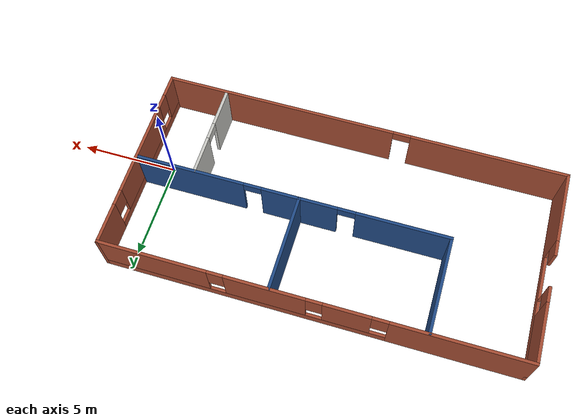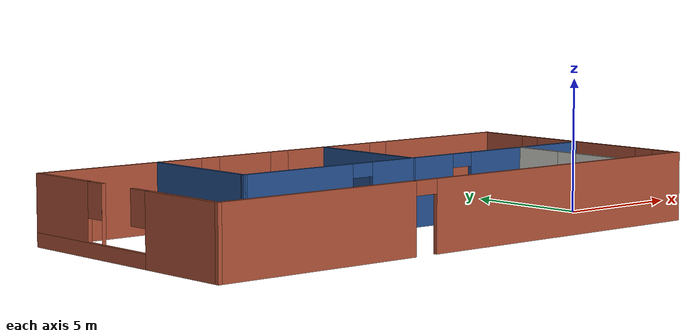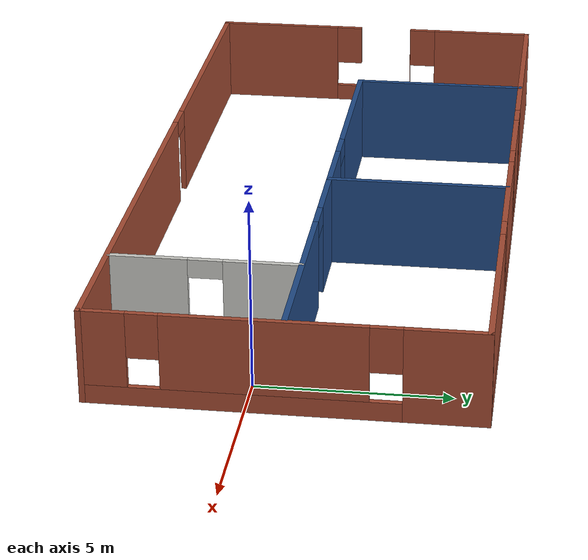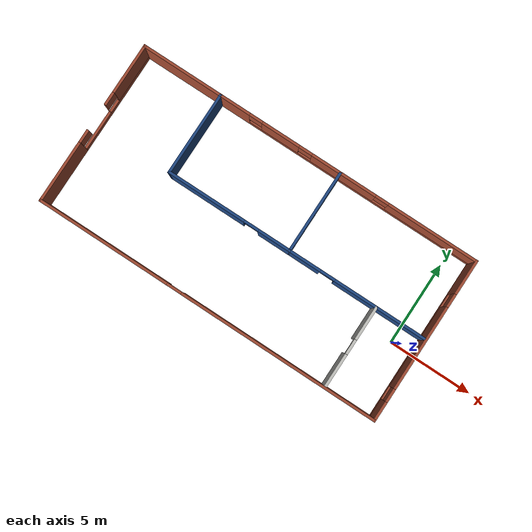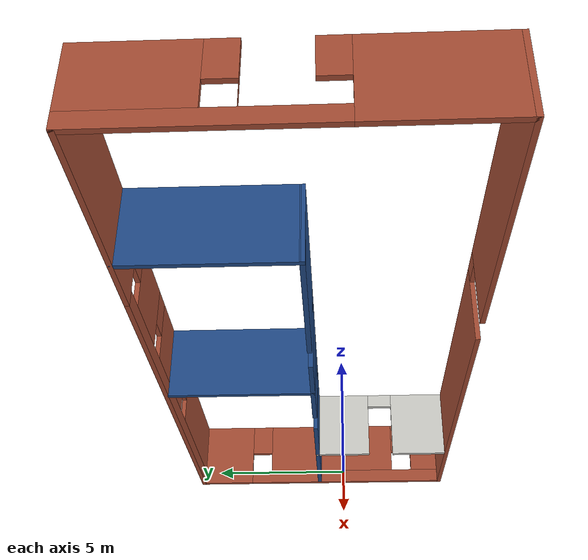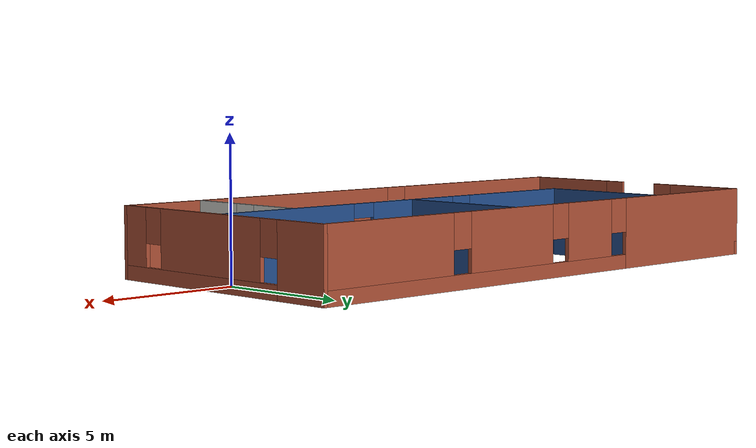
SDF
<?xml version='1.0'?>
<sdf version='1.7'>
  <model name='building'>
    <pose>-9.20736 0.951909 0 0 -0 0</pose>
    <link name='Wall_19'>
      <pose>-0 4.925 0 0 -0 0</pose>
      <visual name='Wall_19_Visual_0'>
        <pose>-7.12827 0 1.25 0 -0 0</pose>
        <geometry>
          <box>
            <size>6.74346 0.15 2.5</size>
          </box>
        </geometry>
        <material>
          <script>
            <uri>file://media/materials/scripts/gazebo.material</uri>
            <name>Gazebo/Bricks</name>
          </script>
          <ambient>0.12549 0.290196 0.529412 1</ambient>
        </material>
        <meta>
          <layer>0</layer>
        </meta>
      </visual>
      <collision name='Wall_19_Collision_0'>
        <geometry>
          <box>
            <size>6.74346 0.15 2.5</size>
          </box>
        </geometry>
        <pose>-7.12827 0 1.25 0 -0 0</pose>
      </collision>
      <visual name='Wall_19_Visual_1'>
        <pose>3.37173 0 0.25 0 -0 0</pose>
        <geometry>
          <box>
            <size>14.2565 0.15 0.5</size>
          </box>
        </geometry>
        <material>
          <script>
            <uri>file://media/materials/scripts/gazebo.material</uri>
            <name>Gazebo/Bricks</name>
          </script>
          <ambient>0.12549 0.290196 0.529412 1</ambient>
        </material>
        <meta>
          <layer>0</layer>
        </meta>
      </visual>
      <collision name='Wall_19_Collision_1'>
        <geometry>
          <box>
            <size>14.2565 0.15 0.5</size>
          </box>
        </geometry>
        <pose>3.37173 0 0.25 0 -0 0</pose>
      </collision>
      <visual name='Wall_19_Visual_2'>
        <pose>-1.79523 0 1.5 0 -0 0</pose>
        <geometry>
          <box>
            <size>2.32263 0.15 2</size>
          </box>
        </geometry>
        <material>
          <script>
            <uri>file://media/materials/scripts/gazebo.material</uri>
            <name>Gazebo/Bricks</name>
          </script>
          <ambient>0.12549 0.290196 0.529412 1</ambient>
        </material>
        <meta>
          <layer>0</layer>
        </meta>
      </visual>
      <collision name='Wall_19_Collision_2'>
        <geometry>
          <box>
            <size>2.32263 0.15 2</size>
          </box>
        </geometry>
        <pose>-1.79523 0 1.5 0 -0 0</pose>
      </collision>
      <visual name='Wall_19_Visual_3'>
        <pose>2.16011 0 1.5 0 -0 0</pose>
        <geometry>
          <box>
            <size>3.98803 0.15 2</size>
          </box>
        </geometry>
        <material>
          <script>
            <uri>file://media/materials/scripts/gazebo.material</uri>
            <name>Gazebo/Bricks</name>
          </script>
          <ambient>0.12549 0.290196 0.529412 1</ambient>
        </material>
        <meta>
          <layer>0</layer>
        </meta>
      </visual>
      <collision name='Wall_19_Collision_3'>
        <geometry>
          <box>
            <size>3.98803 0.15 2</size>
          </box>
        </geometry>
        <pose>2.16011 0 1.5 0 -0 0</pose>
      </collision>
      <visual name='Wall_19_Visual_4'>
        <pose>7.72706 0 1.5 0 -0 0</pose>
        <geometry>
          <box>
            <size>5.54587 0.15 2</size>
          </box>
        </geometry>
        <material>
          <script>
            <uri>file://media/materials/scripts/gazebo.material</uri>
            <name>Gazebo/Bricks</name>
          </script>
          <ambient>0.12549 0.290196 0.529412 1</ambient>
        </material>
        <meta>
          <layer>0</layer>
        </meta>
      </visual>
      <collision name='Wall_19_Collision_4'>
        <geometry>
          <box>
            <size>5.54587 0.15 2</size>
          </box>
        </geometry>
        <pose>7.72706 0 1.5 0 -0 0</pose>
      </collision>
      <visual name='Wall_19_Visual_5'>
        <pose>-3.35654 0 1.9 0 -0 0</pose>
        <geometry>
          <box>
            <size>0.8 0.15 1.2</size>
          </box>
        </geometry>
        <material>
          <script>
            <uri>file://media/materials/scripts/gazebo.material</uri>
            <name>Gazebo/Bricks</name>
          </script>
          <ambient>0.12549 0.290196 0.529412 1</ambient>
        </material>
        <meta>
          <layer>0</layer>
        </meta>
      </visual>
      <collision name='Wall_19_Collision_5'>
        <geometry>
          <box>
            <size>0.8 0.15 1.2</size>
          </box>
        </geometry>
        <pose>-3.35654 0 1.9 0 -0 0</pose>
      </collision>
      <visual name='Wall_19_Visual_6'>
        <pose>-0.233909 0 1.9 0 -0 0</pose>
        <geometry>
          <box>
            <size>0.8 0.15 1.2</size>
          </box>
        </geometry>
        <material>
          <script>
            <uri>file://media/materials/scripts/gazebo.material</uri>
            <name>Gazebo/Bricks</name>
          </script>
          <ambient>0.12549 0.290196 0.529412 1</ambient>
        </material>
        <meta>
          <layer>0</layer>
        </meta>
      </visual>
      <collision name='Wall_19_Collision_6'>
        <geometry>
          <box>
            <size>0.8 0.15 1.2</size>
          </box>
        </geometry>
        <pose>-0.233909 0 1.9 0 -0 0</pose>
      </collision>
      <visual name='Wall_19_Visual_7'>
        <pose>4.55413 0 1.9 0 -0 0</pose>
        <geometry>
          <box>
            <size>0.8 0.15 1.2</size>
          </box>
        </geometry>
        <material>
          <script>
            <uri>file://media/materials/scripts/gazebo.material</uri>
            <name>Gazebo/Bricks</name>
          </script>
          <ambient>0.12549 0.290196 0.529412 1</ambient>
        </material>
        <meta>
          <layer>0</layer>
        </meta>
      </visual>
      <collision name='Wall_19_Collision_7'>
        <geometry>
          <box>
            <size>0.8 0.15 1.2</size>
          </box>
        </geometry>
        <pose>4.55413 0 1.9 0 -0 0</pose>
      </collision>
    </link>
    <link name='Wall_20'>
      <pose>10.425 0 0 0 -0 -1.5708</pose>
      <visual name='Wall_20_Visual_0'>
        <pose>-3.93729 0 1.25 0 -0 0</pose>
        <geometry>
          <box>
            <size>2.12543 0.15 2.5</size>
          </box>
        </geometry>
        <material>
          <script>
            <uri>file://media/materials/scripts/gazebo.material</uri>
            <name>Gazebo/Bricks</name>
          </script>
          <ambient>0.12549 0.290196 0.529412 1</ambient>
        </material>
        <meta>
          <layer>0</layer>
        </meta>
      </visual>
      <collision name='Wall_20_Collision_0'>
        <geometry>
          <box>
            <size>2.12543 0.15 2.5</size>
          </box>
        </geometry>
        <pose>-3.93729 0 1.25 0 -0 0</pose>
      </collision>
      <visual name='Wall_20_Visual_1'>
        <pose>1.06271 0 0.25 0 -0 0</pose>
        <geometry>
          <box>
            <size>7.87457 0.15 0.5</size>
          </box>
        </geometry>
        <material>
          <script>
            <uri>file://media/materials/scripts/gazebo.material</uri>
            <name>Gazebo/Bricks</name>
          </script>
          <ambient>0.12549 0.290196 0.529412 1</ambient>
        </material>
        <meta>
          <layer>0</layer>
        </meta>
      </visual>
      <collision name='Wall_20_Collision_1'>
        <geometry>
          <box>
            <size>7.87457 0.15 0.5</size>
          </box>
        </geometry>
        <pose>1.06271 0 0.25 0 -0 0</pose>
      </collision>
      <visual name='Wall_20_Visual_2'>
        <pose>0.457232 0 1.5 0 -0 0</pose>
        <geometry>
          <box>
            <size>5.06361 0.15 2</size>
          </box>
        </geometry>
        <material>
          <script>
            <uri>file://media/materials/scripts/gazebo.material</uri>
            <name>Gazebo/Bricks</name>
          </script>
          <ambient>0.12549 0.290196 0.529412 1</ambient>
        </material>
        <meta>
          <layer>0</layer>
        </meta>
      </visual>
      <collision name='Wall_20_Collision_2'>
        <geometry>
          <box>
            <size>5.06361 0.15 2</size>
          </box>
        </geometry>
        <pose>0.457232 0 1.5 0 -0 0</pose>
      </collision>
      <visual name='Wall_20_Visual_3'>
        <pose>4.39452 0 1.5 0 -0 0</pose>
        <geometry>
          <box>
            <size>1.21096 0.15 2</size>
          </box>
        </geometry>
        <material>
          <script>
            <uri>file://media/materials/scripts/gazebo.material</uri>
            <name>Gazebo/Bricks</name>
          </script>
          <ambient>0.12549 0.290196 0.529412 1</ambient>
        </material>
        <meta>
          <layer>0</layer>
        </meta>
      </visual>
      <collision name='Wall_20_Collision_3'>
        <geometry>
          <box>
            <size>1.21096 0.15 2</size>
          </box>
        </geometry>
        <pose>4.39452 0 1.5 0 -0 0</pose>
      </collision>
      <visual name='Wall_20_Visual_4'>
        <pose>-2.47457 0 1.9 0 -0 0</pose>
        <geometry>
          <box>
            <size>0.8 0.15 1.2</size>
          </box>
        </geometry>
        <material>
          <script>
            <uri>file://media/materials/scripts/gazebo.material</uri>
            <name>Gazebo/Bricks</name>
          </script>
          <ambient>0.12549 0.290196 0.529412 1</ambient>
        </material>
        <meta>
          <layer>0</layer>
        </meta>
      </visual>
      <collision name='Wall_20_Collision_4'>
        <geometry>
          <box>
            <size>0.8 0.15 1.2</size>
          </box>
        </geometry>
        <pose>-2.47457 0 1.9 0 -0 0</pose>
      </collision>
      <visual name='Wall_20_Visual_5'>
        <pose>3.38904 0 1.9 0 -0 0</pose>
        <geometry>
          <box>
            <size>0.8 0.15 1.2</size>
          </box>
        </geometry>
        <material>
          <script>
            <uri>file://media/materials/scripts/gazebo.material</uri>
            <name>Gazebo/Bricks</name>
          </script>
          <ambient>0.12549 0.290196 0.529412 1</ambient>
        </material>
        <meta>
          <layer>0</layer>
        </meta>
      </visual>
      <collision name='Wall_20_Collision_5'>
        <geometry>
          <box>
            <size>0.8 0.15 1.2</size>
          </box>
        </geometry>
        <pose>3.38904 0 1.9 0 -0 0</pose>
      </collision>
    </link>
    <link name='Wall_21'>
      <pose>-0 -4.925 0 0 -0 3.14159</pose>
      <visual name='Wall_21_Visual_0'>
        <pose>-4.4703 0 1.25 0 -0 0</pose>
        <geometry>
          <box>
            <size>12.0594 0.15 2.5</size>
          </box>
        </geometry>
        <material>
          <script>
            <uri>file://media/materials/scripts/gazebo.material</uri>
            <name>Gazebo/Bricks</name>
          </script>
          <ambient>0.12549 0.290196 0.529412 1</ambient>
        </material>
        <meta>
          <layer>0</layer>
        </meta>
      </visual>
      <collision name='Wall_21_Collision_0'>
        <geometry>
          <box>
            <size>12.0594 0.15 2.5</size>
          </box>
        </geometry>
        <pose>-4.4703 0 1.25 0 -0 0</pose>
      </collision>
      <visual name='Wall_21_Visual_1'>
        <pose>6.4797 0 1.25 0 -0 0</pose>
        <geometry>
          <box>
            <size>8.04059 0.15 2.5</size>
          </box>
        </geometry>
        <material>
          <script>
            <uri>file://media/materials/scripts/gazebo.material</uri>
            <name>Gazebo/Bricks</name>
          </script>
          <ambient>0.12549 0.290196 0.529412 1</ambient>
        </material>
        <meta>
          <layer>0</layer>
        </meta>
      </visual>
      <collision name='Wall_21_Collision_1'>
        <geometry>
          <box>
            <size>8.04059 0.15 2.5</size>
          </box>
        </geometry>
        <pose>6.4797 0 1.25 0 -0 0</pose>
      </collision>
      <visual name='Wall_21_Visual_2'>
        <pose>2.00941 0 2.25 0 -0 0</pose>
        <geometry>
          <box>
            <size>0.9 0.15 0.5</size>
          </box>
        </geometry>
        <material>
          <script>
            <uri>file://media/materials/scripts/gazebo.material</uri>
            <name>Gazebo/Bricks</name>
          </script>
          <ambient>0.12549 0.290196 0.529412 1</ambient>
        </material>
        <meta>
          <layer>0</layer>
        </meta>
      </visual>
      <collision name='Wall_21_Collision_2'>
        <geometry>
          <box>
            <size>0.9 0.15 0.5</size>
          </box>
        </geometry>
        <pose>2.00941 0 2.25 0 -0 0</pose>
      </collision>
    </link>
    <link name='Wall_22'>
      <pose>-10.425 0 0 0 -0 1.5708</pose>
      <visual name='Wall_22_Visual_0'>
        <pose>-3.12237 0 1.25 0 -0 0</pose>
        <geometry>
          <box>
            <size>3.75525 0.15 2.5</size>
          </box>
        </geometry>
        <material>
          <script>
            <uri>file://media/materials/scripts/gazebo.material</uri>
            <name>Gazebo/Bricks</name>
          </script>
          <ambient>0.12549 0.290196 0.529412 1</ambient>
        </material>
        <meta>
          <layer>0</layer>
        </meta>
      </visual>
      <collision name='Wall_22_Collision_0'>
        <geometry>
          <box>
            <size>3.75525 0.15 2.5</size>
          </box>
        </geometry>
        <pose>-3.12237 0 1.25 0 -0 0</pose>
      </collision>
      <visual name='Wall_22_Visual_1'>
        <pose>1.87763 0 0.25 0 -0 0</pose>
        <geometry>
          <box>
            <size>6.24475 0.15 0.5</size>
          </box>
        </geometry>
        <material>
          <script>
            <uri>file://media/materials/scripts/gazebo.material</uri>
            <name>Gazebo/Bricks</name>
          </script>
          <ambient>0.12549 0.290196 0.529412 1</ambient>
        </material>
        <meta>
          <layer>0</layer>
        </meta>
      </visual>
      <collision name='Wall_22_Collision_1'>
        <geometry>
          <box>
            <size>6.24475 0.15 0.5</size>
          </box>
        </geometry>
        <pose>1.87763 0 0.25 0 -0 0</pose>
      </collision>
      <visual name='Wall_22_Visual_2'>
        <pose>1.14121 0 1.5 0 -0 0</pose>
        <geometry>
          <box>
            <size>0.002867 0.15 2</size>
          </box>
        </geometry>
        <material>
          <script>
            <uri>file://media/materials/scripts/gazebo.material</uri>
            <name>Gazebo/Bricks</name>
          </script>
          <ambient>0.12549 0.290196 0.529412 1</ambient>
        </material>
        <meta>
          <layer>0</layer>
        </meta>
      </visual>
      <collision name='Wall_22_Collision_2'>
        <geometry>
          <box>
            <size>0.002867 0.15 2</size>
          </box>
        </geometry>
        <pose>1.14121 0 1.5 0 -0 0</pose>
      </collision>
      <visual name='Wall_22_Visual_3'>
        <pose>3.47132 0 1.5 0 -0 0</pose>
        <geometry>
          <box>
            <size>3.05735 0.15 2</size>
          </box>
        </geometry>
        <material>
          <script>
            <uri>file://media/materials/scripts/gazebo.material</uri>
            <name>Gazebo/Bricks</name>
          </script>
          <ambient>0.12549 0.290196 0.529412 1</ambient>
        </material>
        <meta>
          <layer>0</layer>
        </meta>
      </visual>
      <collision name='Wall_22_Collision_3'>
        <geometry>
          <box>
            <size>3.05735 0.15 2</size>
          </box>
        </geometry>
        <pose>3.47132 0 1.5 0 -0 0</pose>
      </collision>
      <visual name='Wall_22_Visual_4'>
        <pose>-0.851489 0 1.9 0 -0 0</pose>
        <geometry>
          <box>
            <size>0.78652 0.15 1.2</size>
          </box>
        </geometry>
        <material>
          <script>
            <uri>file://media/materials/scripts/gazebo.material</uri>
            <name>Gazebo/Bricks</name>
          </script>
          <ambient>0.12549 0.290196 0.529412 1</ambient>
        </material>
        <meta>
          <layer>0</layer>
        </meta>
      </visual>
      <collision name='Wall_22_Collision_4'>
        <geometry>
          <box>
            <size>0.78652 0.15 1.2</size>
          </box>
        </geometry>
        <pose>-0.851489 0 1.9 0 -0 0</pose>
      </collision>
      <visual name='Wall_22_Visual_5'>
        <pose>1.54265 0 1.9 0 -0 0</pose>
        <geometry>
          <box>
            <size>0.8 0.15 1.2</size>
          </box>
        </geometry>
        <material>
          <script>
            <uri>file://media/materials/scripts/gazebo.material</uri>
            <name>Gazebo/Bricks</name>
          </script>
          <ambient>0.12549 0.290196 0.529412 1</ambient>
        </material>
        <meta>
          <layer>0</layer>
        </meta>
      </visual>
      <collision name='Wall_22_Collision_5'>
        <geometry>
          <box>
            <size>0.8 0.15 1.2</size>
          </box>
        </geometry>
        <pose>1.54265 0 1.9 0 -0 0</pose>
      </collision>
    </link>
    <link name='Wall_27'>
      <collision name='Wall_27_Collision'>
        <geometry>
          <box>
            <size>5 0.15 2.5</size>
          </box>
        </geometry>
        <pose>0 0 1.25 0 -0 0</pose>
      </collision>
      <visual name='Wall_27_Visual'>
        <pose>0 0 1.25 0 -0 0</pose>
        <geometry>
          <box>
            <size>5 0.15 2.5</size>
          </box>
        </geometry>
        <material>
          <script>
            <uri>file://media/materials/scripts/gazebo.material</uri>
            <name>Gazebo/Grey</name>
          </script>
          <ambient>0.12549 0.290196 0.529412 1</ambient>
        </material>
        <meta>
          <layer>0</layer>
        </meta>
      </visual>
      <pose>1.94325 2.46467 0 0 -0 -1.5708</pose>
    </link>
    <link name='Wall_28'>
      <pose>6.11825 0.03967 0 0 -0 0</pose>
      <visual name='Wall_28_Visual_0'>
        <pose>-3.24679 0 1.25 0 -0 0</pose>
        <geometry>
          <box>
            <size>2.00642 0.15 2.5</size>
          </box>
        </geometry>
        <material>
          <script>
            <uri>file://media/materials/scripts/gazebo.material</uri>
            <name>Gazebo/Grey</name>
          </script>
          <ambient>0.12549 0.290196 0.529412 1</ambient>
        </material>
        <meta>
          <layer>0</layer>
        </meta>
      </visual>
      <collision name='Wall_28_Collision_0'>
        <geometry>
          <box>
            <size>2.00642 0.15 2.5</size>
          </box>
        </geometry>
        <pose>-3.24679 0 1.25 0 -0 0</pose>
      </collision>
      <visual name='Wall_28_Visual_1'>
        <pose>1.45321 0 1.25 0 -0 0</pose>
        <geometry>
          <box>
            <size>5.59358 0.15 2.5</size>
          </box>
        </geometry>
        <material>
          <script>
            <uri>file://media/materials/scripts/gazebo.material</uri>
            <name>Gazebo/Grey</name>
          </script>
          <ambient>0.12549 0.290196 0.529412 1</ambient>
        </material>
        <meta>
          <layer>0</layer>
        </meta>
      </visual>
      <collision name='Wall_28_Collision_1'>
        <geometry>
          <box>
            <size>5.59358 0.15 2.5</size>
          </box>
        </geometry>
        <pose>1.45321 0 1.25 0 -0 0</pose>
      </collision>
      <visual name='Wall_28_Visual_2'>
        <pose>-1.79358 0 2.25 0 -0 0</pose>
        <geometry>
          <box>
            <size>0.9 0.15 0.5</size>
          </box>
        </geometry>
        <material>
          <script>
            <uri>file://media/materials/scripts/gazebo.material</uri>
            <name>Gazebo/Grey</name>
          </script>
          <ambient>0.12549 0.290196 0.529412 1</ambient>
        </material>
        <meta>
          <layer>0</layer>
        </meta>
      </visual>
      <collision name='Wall_28_Collision_2'>
        <geometry>
          <box>
            <size>0.9 0.15 0.5</size>
          </box>
        </geometry>
        <pose>-1.79358 0 2.25 0 -0 0</pose>
      </collision>
    </link>
    <link name='Wall_30'>
      <pose>7.35673 -2.41059 0 0 -0 -1.5708</pose>
      <visual name='Wall_30_Visual_0'>
        <pose>-1.47644 0 1.25 0 -0 0</pose>
        <geometry>
          <box>
            <size>2.04712 0.15 2.5</size>
          </box>
        </geometry>
        <material>
          <script>
            <uri>file://media/materials/scripts/gazebo.material</uri>
            <name>Gazebo/CeilingTiled</name>
          </script>
          <ambient>0.12549 0.290196 0.529412 1</ambient>
        </material>
        <meta>
          <layer>0</layer>
        </meta>
      </visual>
      <collision name='Wall_30_Collision_0'>
        <geometry>
          <box>
            <size>2.04712 0.15 2.5</size>
          </box>
        </geometry>
        <pose>-1.47644 0 1.25 0 -0 0</pose>
      </collision>
      <visual name='Wall_30_Visual_1'>
        <pose>1.47356 0 1.25 0 -0 0</pose>
        <geometry>
          <box>
            <size>2.05287 0.15 2.5</size>
          </box>
        </geometry>
        <material>
          <script>
            <uri>file://media/materials/scripts/gazebo.material</uri>
            <name>Gazebo/CeilingTiled</name>
          </script>
          <ambient>0.12549 0.290196 0.529412 1</ambient>
        </material>
        <meta>
          <layer>0</layer>
        </meta>
      </visual>
      <collision name='Wall_30_Collision_1'>
        <geometry>
          <box>
            <size>2.05287 0.15 2.5</size>
          </box>
        </geometry>
        <pose>1.47356 0 1.25 0 -0 0</pose>
      </collision>
      <visual name='Wall_30_Visual_2'>
        <pose>-0.002875 0 2.25 0 -0 0</pose>
        <geometry>
          <box>
            <size>0.9 0.15 0.5</size>
          </box>
        </geometry>
        <material>
          <script>
            <uri>file://media/materials/scripts/gazebo.material</uri>
            <name>Gazebo/CeilingTiled</name>
          </script>
          <ambient>0.12549 0.290196 0.529412 1</ambient>
        </material>
        <meta>
          <layer>0</layer>
        </meta>
      </visual>
      <collision name='Wall_30_Collision_2'>
        <geometry>
          <box>
            <size>0.9 0.15 0.5</size>
          </box>
        </geometry>
        <pose>-0.002875 0 2.25 0 -0 0</pose>
      </collision>
    </link>
    <link name='Wall_34'>
      <collision name='Wall_34_Collision'>
        <geometry>
          <box>
            <size>5 0.15 2.5</size>
          </box>
        </geometry>
        <pose>0 0 1.25 0 -0 0</pose>
      </collision>
      <visual name='Wall_34_Visual'>
        <pose>0 0 1.25 0 -0 0</pose>
        <geometry>
          <box>
            <size>5 0.15 2.5</size>
          </box>
        </geometry>
        <material>
          <script>
            <uri>file://media/materials/scripts/gazebo.material</uri>
            <name>Gazebo/Grey</name>
          </script>
          <ambient>0.12549 0.290196 0.529412 1</ambient>
        </material>
        <meta>
          <layer>0</layer>
        </meta>
      </visual>
      <pose>-5.606 2.46145 0 0 -0 -1.5708</pose>
    </link>
    <link name='Wall_35'>
      <pose>-1.83137 0.03806 0 0 -0 0.000426</pose>
      <visual name='Wall_35_Visual_0'>
        <pose>-1.45854 0 1.25 0 -0 0</pose>
        <geometry>
          <box>
            <size>4.78217 0.15 2.5</size>
          </box>
        </geometry>
        <material>
          <script>
            <uri>file://media/materials/scripts/gazebo.material</uri>
            <name>Gazebo/Grey</name>
          </script>
          <ambient>0.12549 0.290196 0.529412 1</ambient>
        </material>
        <meta>
          <layer>0</layer>
        </meta>
      </visual>
      <collision name='Wall_35_Collision_0'>
        <geometry>
          <box>
            <size>4.78217 0.15 2.5</size>
          </box>
        </geometry>
        <pose>-1.45854 0 1.25 0 -0 0</pose>
      </collision>
      <visual name='Wall_35_Visual_1'>
        <pose>2.84109 0 1.25 0 -0 0</pose>
        <geometry>
          <box>
            <size>2.01707 0.15 2.5</size>
          </box>
        </geometry>
        <material>
          <script>
            <uri>file://media/materials/scripts/gazebo.material</uri>
            <name>Gazebo/Grey</name>
          </script>
          <ambient>0.12549 0.290196 0.529412 1</ambient>
        </material>
        <meta>
          <layer>0</layer>
        </meta>
      </visual>
      <collision name='Wall_35_Collision_1'>
        <geometry>
          <box>
            <size>2.01707 0.15 2.5</size>
          </box>
        </geometry>
        <pose>2.84109 0 1.25 0 -0 0</pose>
      </collision>
      <visual name='Wall_35_Visual_2'>
        <pose>1.38255 0 2.25 0 -0 0</pose>
        <geometry>
          <box>
            <size>0.9 0.15 0.5</size>
          </box>
        </geometry>
        <material>
          <script>
            <uri>file://media/materials/scripts/gazebo.material</uri>
            <name>Gazebo/Grey</name>
          </script>
          <ambient>0.12549 0.290196 0.529412 1</ambient>
        </material>
        <meta>
          <layer>0</layer>
        </meta>
      </visual>
      <collision name='Wall_35_Collision_2'>
        <geometry>
          <box>
            <size>0.9 0.15 0.5</size>
          </box>
        </geometry>
        <pose>1.38255 0 2.25 0 -0 0</pose>
      </collision>
    </link>
    <static>1</static>
  </model>
</sdf>
